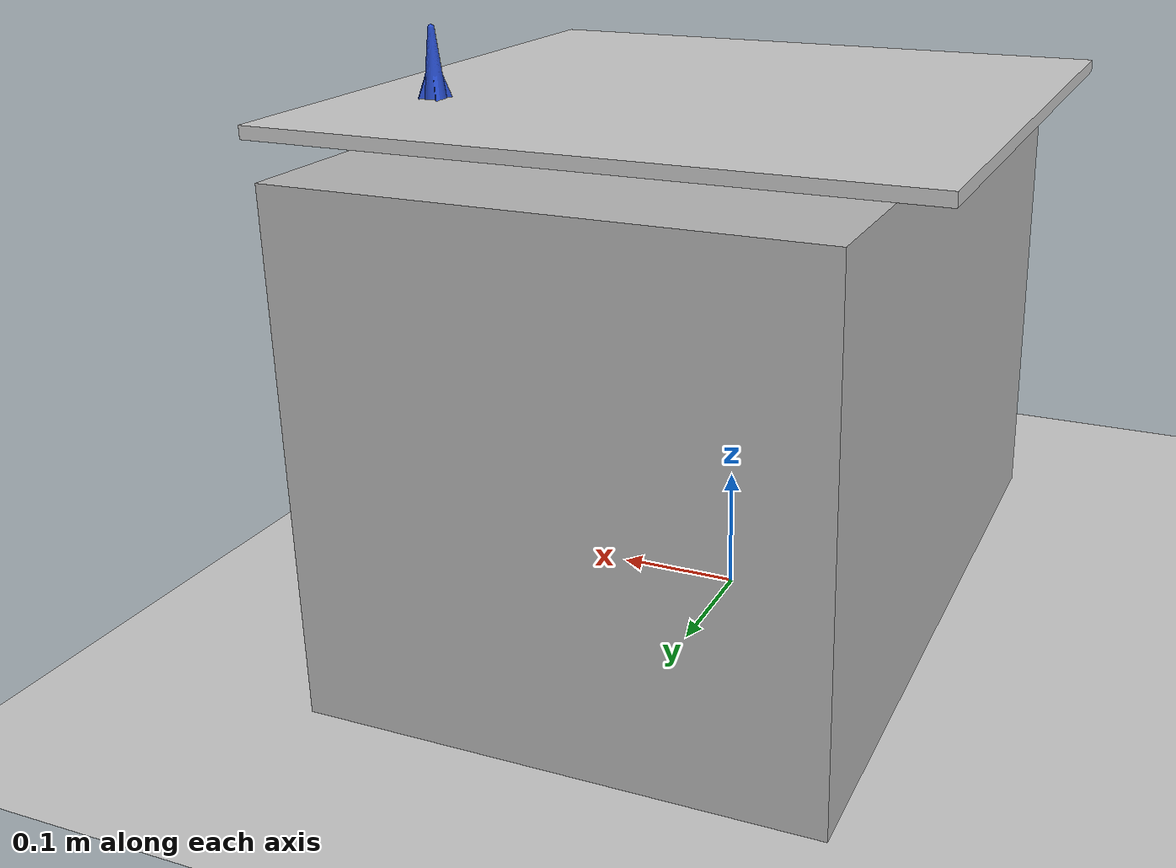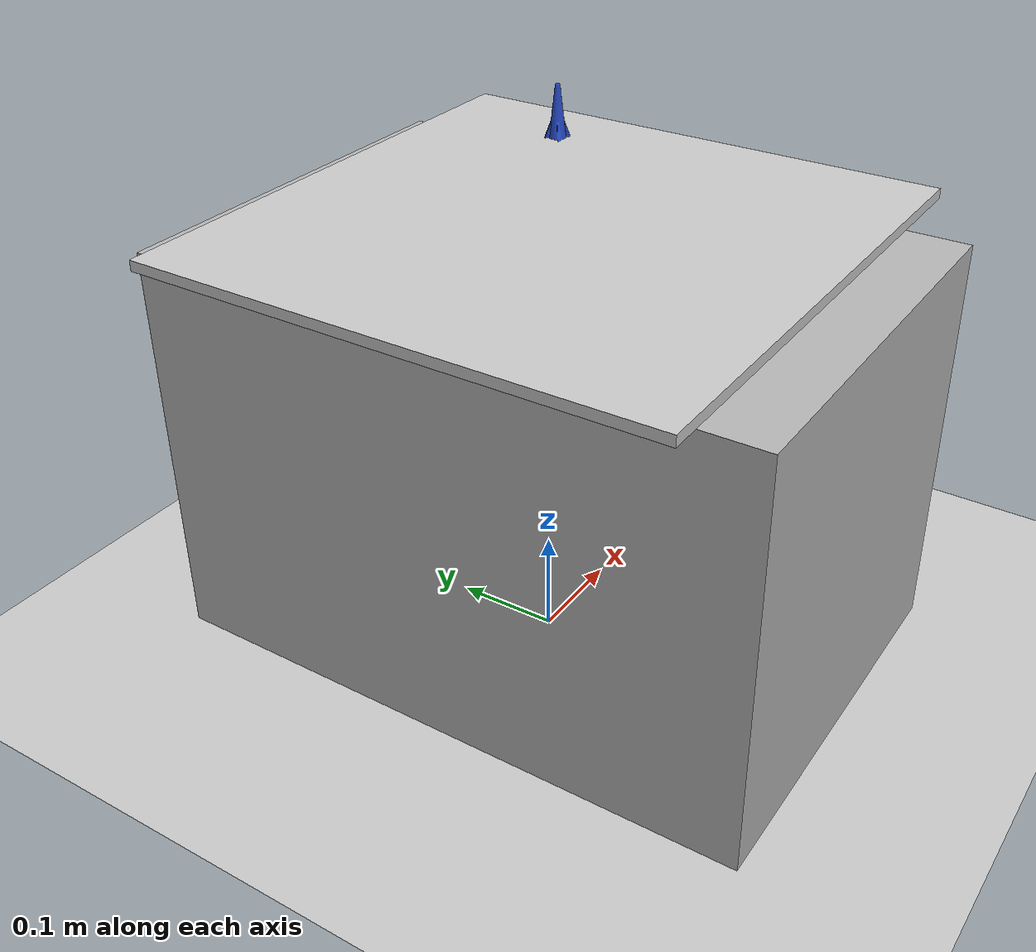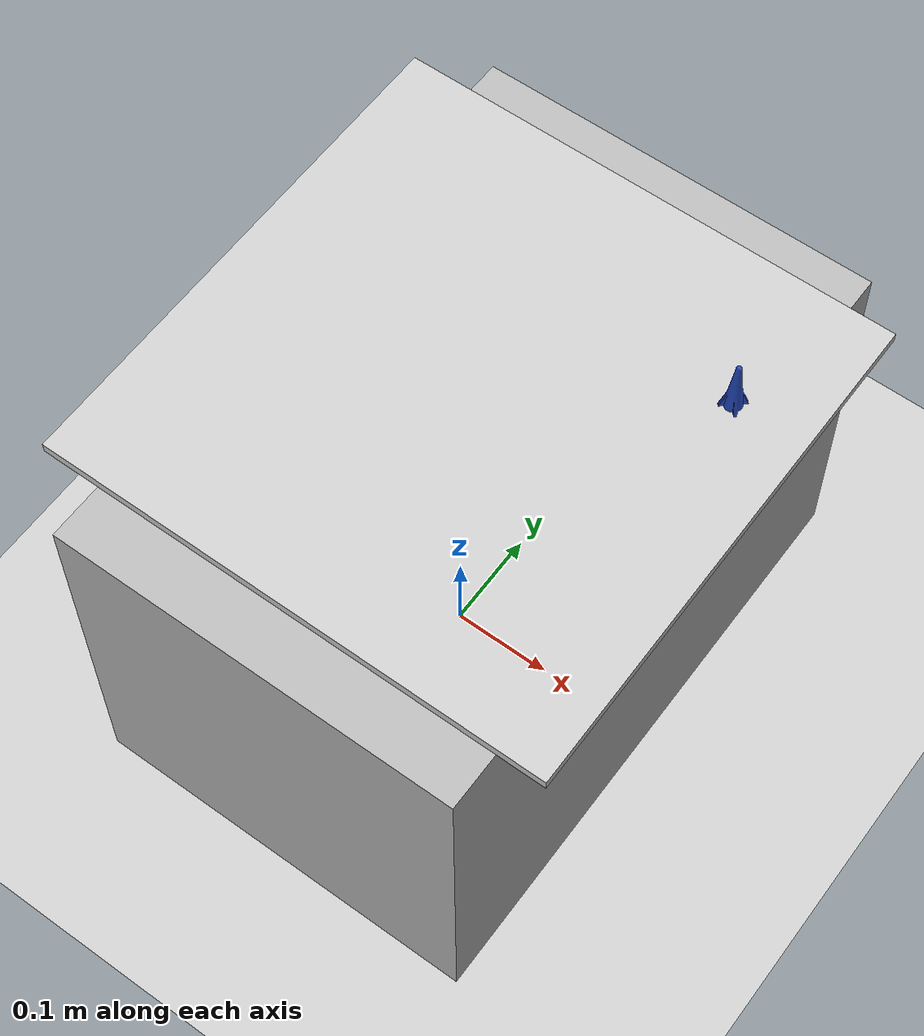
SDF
<?xml version="1.0" ?>
<sdf version="1.6">
  <world name="empty_with_soft_block_probe">
    <!--A global light source-->
    <include>
      <uri>model://sun</uri>
    </include>
    <!--A ground plane-->
    <include>
      <uri>model://ground_plane</uri>
    </include>
    <!--A Table-->
    <include>
      <uri>model://table</uri>
      <pose>0.016428 0.000584 0.0 0 -0 0</pose>
      <static>1</static>
    </include>
    <!--A soft block-->
    <include>
      <uri>model://soft_block</uri>
      <pose>0.016428 0.000584 0.419773 0 0 0</pose>
      <static>1</static>
    </include>
    <!--Our probe model-->
    <include>
      <uri>model://probe_model</uri>
      <pose>0.2 0.1 0.422 0 0 0</pose>
      <static>1</static>
    </include>
    <physics type="ode">
      <max_step_size>0.001</max_step_size>
      <real_time_factor>1</real_time_factor>
      <real_time_update_rate>1000</real_time_update_rate>
      <ode>
        <solver>
          <type>quick</type>
          <iters>50</iters>
          <sor>1.3</sor>
        </solver>
      </ode>
    </physics>
  </world>
</sdf>

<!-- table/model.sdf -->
<sdf version='1.6'>
  <model name='table'>
    <link name='link'>
      <pose>0 0 0.2 0 -0 0</pose>
      <inertial>
        <!--
          惯性属性中心点，通常与几何中心一致
          设置为原点(0,0,0)表示惯性中心与链接坐标系原点重合
        -->
        <pose>0 0 0 0 -0 0</pose>
        <!-- 质量: 10kg，适合模拟稳定的桌子结构 -->
        <mass>10</mass>
        <inertia>
          <ixx>0.166667</ixx>  <!-- x轴转动惯性 -->
          <ixy>0</ixy>          <!-- xy平面耦合惯性 -->
          <ixz>0</ixz>          <!-- xz平面耦合惯性 -->
          <iyy>0.166667</iyy>   <!-- y轴转动惯性 -->
          <iyz>0</iyz>          <!-- yz平面耦合惯性 -->
          <izz>0.166667</izz>   <!-- z轴转动惯性 -->
        </inertia>
      </inertial>
      <!-- 禁用自碰撞检测: 0表示链接内部不进行碰撞检测 -->
      <self_collide>0</self_collide>
      <!-- 禁用风力效果: 桌子不受风力影响 -->
      <enable_wind>0</enable_wind>
      <!-- 非运动学模式: 0表示受物理引擎控制，而非纯运动学 -->
      <kinematic>0</kinematic>
      <visual name='visual'>
        <!-- 视觉元素位姿: 相对于链接坐标系 -->
        <pose>0 0 0 0 -0 0</pose>
        <geometry>
          <box>
            <size>0.4 0.6 0.4</size>
          </box>
        </geometry>
        <!--
          材质属性: 定义桌面外观
          使用Gazebo内置的灰色材质
        -->
        <material>
          <script>
            <!-- Gazebo标准材质：灰色 -->
            <n>Gazebo/Grey</n>
            <!-- 材质脚本路径 -->
            <uri>file://media/materials/scripts/gazebo.material</uri>
          </script>
          <!-- 像素着色器: 使用标准着色模型 -->
          <shader type='pixel'/>
        </material>
        <!-- 视觉元素位姿: 与链接原点对齐 -->
        <pose>0 0 0 0 -0 0</pose>
        <!-- 透明度: 0表示完全不透明 -->
        <transparency>0</transparency>
        <!-- 投射阴影: 1表示启用阴影投射 -->
        <cast_shadows>1</cast_shadows>
      </visual>
      <collision name='collision'>
        <!-- 激光反射率: 对激光传感器的反射强度 -->
        <laser_retro>0</laser_retro>
        <!-- 最大接触点数: 影响碰撞计算精度 -->
        <max_contacts>10</max_contacts>
        <!-- 碰撞几何体位姿: 与链接原点对齐 -->
        <pose>0 0 0 0 -0 0</pose>
        <!-- 碰撞几何体: 与视觉几何体尺寸一致的长方体 -->
        <geometry>
          <box>
            <size>0.4 0.6 0.4</size>
          </box>
        </geometry>
        <surface>
          <!-- 摩擦特性: 控制探头与桌面接触时的滑动行为 -->
          <friction>
            <ode>
              <!--
                摩擦系数: 1.0，较高摩擦力
                适合模拟桌面材质，防止物体轻易滑落
              -->
              <mu>1</mu>
              <mu2>1</mu2>
              <!-- 主摩擦方向: 使用默认方向 -->
              <fdir1>0 0 0</fdir1>
              <!-- 无滑移: 0表示不允许微小滑动 -->
              <slip1>0</slip1>
              <slip2>0</slip2>
            </ode>
            <!-- 扭转摩擦: 控制物体旋转时的摩擦 -->
            <torsional>
              <!-- 扭转摩擦系数: 1表示较高扭转阻力 -->
              <coefficient>1</coefficient>
              <patch_radius>0</patch_radius>
              <surface_radius>0</surface_radius>
              <!-- 使用接触面积计算: 1表示启用 -->
              <use_patch_radius>1</use_patch_radius>
              <ode>
                <!-- 扭转滑移: 0表示不允许扭转滑动 -->
                <slip>0</slip>
              </ode>
            </torsional>
          </friction>
          <!-- 反弹特性: 控制物体碰撞后的弹性行为 -->
          <bounce>
            <!-- 恢复系数: 0表示完全不反弹 -->
            <restitution_coefficient>0</restitution_coefficient>
            <!-- 反弹阈值: 大于此值的碰撞速度才计算反弹 -->
            <threshold>1e+06</threshold>
          </bounce>
          <!-- 接触特性: 精细控制物理接触行为 -->
          <contact>
            <!-- 非接触碰撞: 0表示禁用非接触碰撞响应 -->
            <collide_without_contact>0</collide_without_contact>
            <collide_without_contact_bitmask>1</collide_without_contact_bitmask>
            <!-- 碰撞掩码: 用于选择性碰撞检测 -->
            <collide_bitmask>1</collide_bitmask>
            <!-- ODE物理引擎接触参数 -->
            <ode>
              <!--
                接触软度: 控制接触面弹性
                0表示刚性接触，适合模拟硬桌面
              -->
              <soft_cfm>0</soft_cfm>
              <!-- 错误减小率: 控制接触误差修正速度 -->
              <soft_erp>0.2</soft_erp>
              <!--
                接触刚度系数: 1e+13表示非常硬的表面
                比软块(1,000,000)高得多，模拟坚硬桌面
              -->
              <kp>1e+13</kp>
              <!-- 阻尼系数: 控制能量耗散率 -->
              <kd>1</kd>
              <!-- 最大接触速度: 限制接触计算中的最大速度 -->
              <max_vel>0.01</max_vel>
              <!-- 最小接触深度: 小于此值的接触被忽略 -->
              <min_depth>0</min_depth>
            </ode>
            <!-- Bullet物理引擎接触参数（备用引擎） -->
            <bullet>
              <!-- 脉冲分离: 使用分离脉冲算法提高稳定性 -->
              <split_impulse>1</split_impulse>
              <split_impulse_penetration_threshold>-0.01</split_impulse_penetration_threshold>
              <!-- Bullet引擎特有的接触参数 -->
              <soft_cfm>0</soft_cfm>
              <soft_erp>0.2</soft_erp>
              <kp>1e+13</kp>
              <kd>1</kd>
            </bullet>
          </contact>
        </surface>
      </collision>
    </link>
    <!--
      静态属性: 1表示桌子固定不移动
      设置为静态可提高仿真性能，适合不需要移动的物体
    -->
    <static>1</static>
    <!--
      允许自动禁用: 1表示当物体静止时可被物理引擎优化
      提高长时间仿真的计算效率
    -->
    <allow_auto_disable>1</allow_auto_disable>
  </model>
</sdf>

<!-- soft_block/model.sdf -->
<sdf version="1.6">
  <model name="soft_block">
    <!--
      静态属性：false表示软块可以运动/形变
      对于硅胶材质，需要允许适当的形变和位移
    -->
    <static>false</static>
    <!--
      模型位姿：相对于世界坐标系，格式: x y z roll pitch yaw
      此处设置的是模型默认位置，实际位置会在世界文件中被覆盖
    -->
    <pose>0.4 0 0.4005 0 0 0</pose>
    <link name="link">
      <inertial>
        <!-- 质量：0.5kg，适中的质量使其能模拟轻柔材料 -->
        <mass>0.5</mass>
        <inertia>
          <ixx>0.0104167</ixx>  <!-- x轴转动惯性 -->
          <ixy>0</ixy>           <!-- xy平面耦合惯性 -->
          <ixz>0</ixz>           <!-- xz平面耦合惯性 -->
          <iyy>0.0104167</iyy>   <!-- y轴转动惯性 -->
          <iyz>0</iyz>           <!-- yz平面耦合惯性 -->
          <izz>0.0208333</izz>   <!-- z轴转动惯性 -->
        </inertia>
      </inertial>
      <collision name="collision">
        <!-- 碰撞几何体：薄板形状 -->
        <geometry>
          <box>
            <!--
              尺寸：[长 宽 高]
              0.5 x 0.5 x 0.01米，将厚度改为1cm
              高度0.01米用于模拟薄的软表面
            -->
            <size>0.5 0.5 0.01</size>
          </box>
        </geometry>
        <surface>
          <!-- 物理参数 - 使用simulation_parameters_config.yaml中定义的值 -->
          <friction>
            <ode>
              <mu>0.0</mu>
              <mu2>0.0</mu2>
              <fdir1>0 0 1</fdir1>
              <slip1>0.0</slip1>
              <slip2>0.0</slip2>
            </ode>
          </friction>
          <contact>
            <ode>
              <min_depth>0.001</min_depth>        <!-- 增加最小深度，允许更深的穿透 -->
              <max_vel>0.1</max_vel>              <!-- 增大最大接触速度 -->
              <kp>100</kp>                        <!-- 大幅降低刚度系数，模拟极软材料 -->
              <kd>10</kd>                         <!-- 降低阻尼系数 -->
              <elastic_modulus>300000.0</elastic_modulus>
              <poisson_ratio>0.45</poisson_ratio>
              <soft_cfm>0.1</soft_cfm>            <!-- 大幅增加软约束混合参数 -->
              <soft_erp>0.2</soft_erp>            <!-- 设置软错误修正参数 -->
            </ode>
          </contact>
        </surface>
      </collision>
      <visual name="visual">
        <!-- 视觉几何体：与碰撞几何体相同的薄板 -->
        <geometry>
          <box>
            <size>0.5 0.5 0.01</size>
          </box>
        </geometry>
        <!--
          材质属性：浅灰色外观
          使用RGB颜色值(0.8, 0.8, 0.8)表示浅灰色
        -->
        <material>
          <!-- 环境光反射率 -->
          <ambient>0.8 0.8 0.8 1</ambient>
          <!-- 漫反射率 -->
          <diffuse>0.8 0.8 0.8 1</diffuse>
          <!-- 镜面反射率 -->
          <specular>0.1 0.1 0.1 1</specular>
        </material>
      </visual>
    </link>
    <!--
      Gazebo特有属性：提供额外的物理和渲染参数
      这些参数可能会覆盖上面定义的一些值
    -->
    <gazebo>
      <!-- Gazebo标准材质：白色 -->
      <material>Gazebo/White</material>
      <!-- 摩擦系数设置为0，消除XY平面的摩擦力 -->
      <mu1>0.0</mu1>
      <mu2>0.0</mu2>
      <!--
        接触刚度系数：降低到100模拟极软硅胶特性
        这是关键参数，决定软块的可压缩性
      -->
      <kp>20000</kp>
      <!-- 阻尼系数：降低到10，与ODE设置保持一致 -->
      <kd>10</kd>
      <!-- 最小接触深度：增加到0.001，允许更深的压缩 -->
      <minDepth>0.001</minDepth>
      <!-- 最大接触速度：增加到0.1，允许更快的形变 -->
      <maxVel>0.1</maxVel>
      <!-- 自碰撞：禁用模型内部的碰撞检测 -->
      <selfCollide>0</selfCollide>
      <!-- 激光回波强度：对激光传感器的反射强度 -->
      <laserRetro>0</laserRetro>
      <!-- 添加弹性模量参数，与软接触模型参数精确匹配 -->
      <elastic_modulus>300000.0</elastic_modulus>
      <!-- 泊松比：根据论文中的材料特性 -->
      <poisson_ratio>0.45</poisson_ratio>
      <!-- 大幅增加软约束混合参数，使接触极其柔和 -->
      <soft_cfm>0.1</soft_cfm>
      <!-- 设置软错误修正参数，降低收敛要求 -->
      <soft_erp>0.2</soft_erp>
    </gazebo>
  </model>
</sdf>

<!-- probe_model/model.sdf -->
<sdf version="1.6">
  <model name="probe_model">
    <pose>0 0 0 0 0 0</pose>
    <link name="link">
      <pose>0 0 0 0 0 0</pose>
      <inertial>
        <mass>0.1</mass>
        <inertia>
          <ixx>0.00001</ixx>
          <ixy>0</ixy>
          <ixz>0</ixz>
          <iyy>0.00001</iyy>
          <iyz>0</iyz>
          <izz>0.00001</izz>
        </inertia>
      </inertial>
      <collision name="collision">
        <geometry>
          <mesh>
            <uri>model://probe_model/meshes/probe.stl</uri>
            <scale>0.001 0.001 0.001</scale>
          </mesh>
        </geometry>
        <surface>
          <contact>
            <ode>
              <kp>100000.0</kp>
              <kd>1.0</kd>
              <max_vel>0.1</max_vel>
              <min_depth>0.001</min_depth>
            </ode>
          </contact>
          <friction>
            <ode>
              <mu>0.8</mu>
              <mu2>0.8</mu2>
              <fdir1>0 0 0</fdir1>
              <slip1>0.0</slip1>
              <slip2>0.0</slip2>
            </ode>
          </friction>
        </surface>
      </collision>
      <visual name="visual">
        <geometry>
          <mesh>
            <uri>model://probe_model/meshes/probe.stl</uri>
            <scale>0.001 0.001 0.001</scale>
          </mesh>
        </geometry>
        <material>
          <script>
            <uri>file://media/materials/scripts/gazebo.material</uri>
            <name>Gazebo/Blue</name>
          </script>
        </material>
        <pose>-0.043 -0.051 -0.057 0 0 0</pose>
      </visual>
    </link>

    <!-- 添加插件，使探头能够跟随机器人末端 -->
    <plugin name="probe_attach" filename="libgazebo_ros_attacher.so">
      <robotNamespace>/</robotNamespace>
    </plugin>
  </model>
</sdf>
